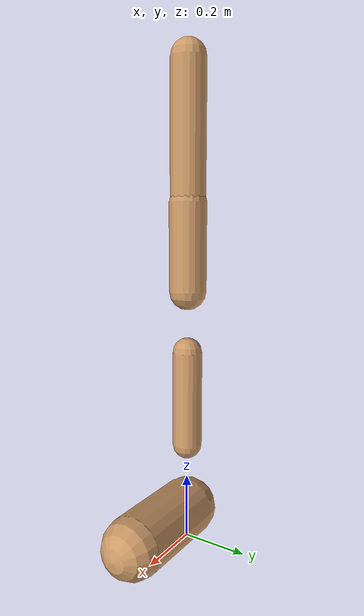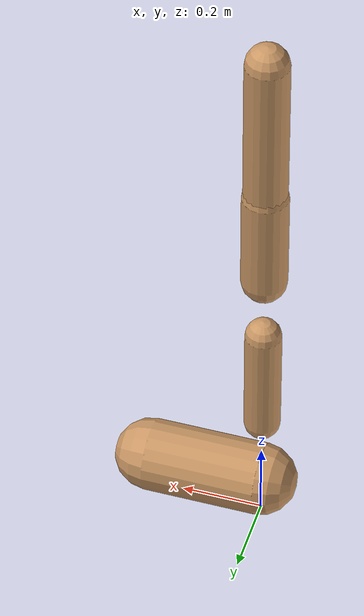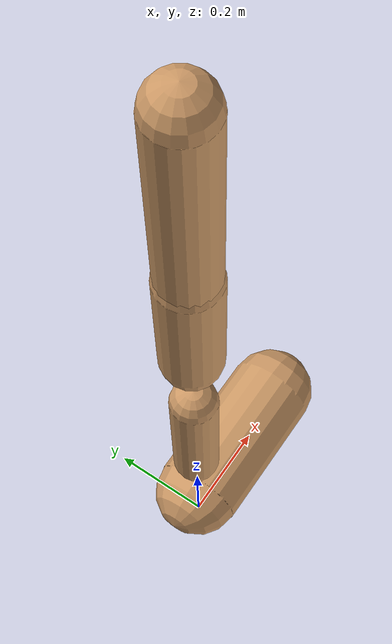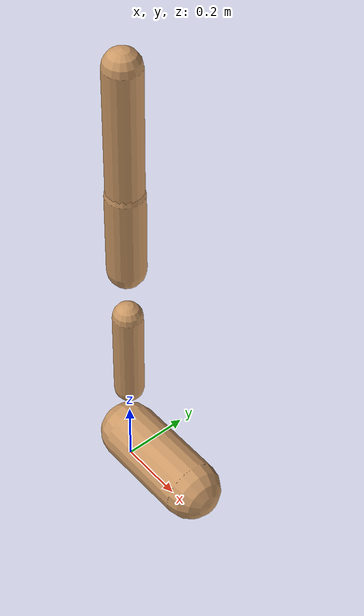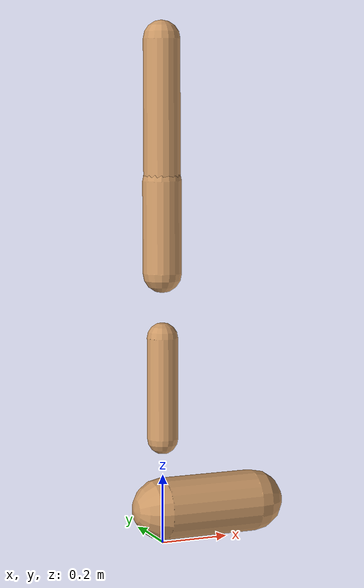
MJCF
<mujoco model="walker2d">
  <compiler angle="degree" coordinate="global" inertiafromgeom="true" />
  <default>
    <joint armature="0.01" damping=".1" limited="true" />
    <geom conaffinity="0" condim="3" contype="1" density="1000" friction="0.8 .1 .1" rgba="0.8 0.6 .4 1" />
  </default>
  <option integrator="RK4" timestep="0.002" />
  <worldbody>

    <body name="torso" pos="0 0 -0.39323007048497916">
      <joint armature="0" axis="1 0 0" damping="0" limited="false" name="ignorex" pos="0 0 0" stiffness="0" type="slide" />
      <joint armature="0" axis="0 0 1" damping="0" limited="false" name="ignorez" pos="0 0 0" ref="1.25" stiffness="0" type="slide" />
      <joint armature="0" axis="0 1 0" damping="0" limited="false" name="ignorey" pos="0 0 0" stiffness="0" type="hinge" />
      <geom fromto="0 0 1.45 0 0 1.05" name="torso_geom" size="0.052772888888507334" type="capsule" />
      <body name="thigh">
        <joint axis="0 -1 0" name="thigh_joint" pos="0 0 1.05" range="-150 0" type="hinge" />
        <geom fromto="0.0 0.0 1.05 0.0 0.0 0.7862668754928849" name="thigh_geom" size="0.0559003321941548" type="capsule" />
        <body name="leg" pos="0.0 0.0 0.1862668754928849">
          <joint axis="0 -1 0" name="leg_joint" pos="0 0 0.6" range="-150 0" type="hinge" />
          <geom fromto="0.0 0.0 0.6 0.0 0.0 0.3069631949920943" name="leg_geom" size="0.04472026575532384" type="capsule" />
          <body name="foot" pos="0.0 0.0 0.20696319499209428">
            <joint axis="0 -1 0" name="foot_joint" pos="0 0 0.1" range="-45 45" type="hinge" />
            <geom fromto="-0.0 0.0 0.10000000000000002 0.2826032660134256 0.0 0.10000000000000002" name="foot_geom" size="0.08996740340222234" type="capsule" />
          </body>
        </body>
      </body>

      <body name="thigh_left">
        <joint axis="0 -1 0" name="thigh_left_joint" pos="0 0 1.05" range="-150 0" type="hinge" />
        <geom fromto="0.0 0.0 1.05 0.0 0.0 0.7862668754928849" name="thigh_left_geom" rgba=".7 .3 .6 1" size="0.0559003321941548" type="capsule" />
        <body name="leg_left" pos="0.0 0.0 0.1862668754928849">
          <joint axis="0 -1 0" name="leg_left_joint" pos="0 0 0.6" range="-150 0" type="hinge" />
          <geom fromto="0.0 0.0 0.6 0.0 0.0 0.3069631949920943" name="leg_left_geom" rgba=".7 .3 .6 1" size="0.04472026575532384" type="capsule" />
          <body name="foot_left" pos="0.0 0.0 0.20696319499209428">
            <joint axis="0 -1 0" name="foot_left_joint" pos="0 0 0.1" range="-45 45" type="hinge" />
            <geom fromto="-0.0 0.0 0.10000000000000002 0.2826032660134256 0.0 0.10000000000000002" name="foot_left_geom" rgba=".7 .3 .6 1" size="0.08996740340222234" type="capsule" />
          </body>
        </body>
      </body>
    </body>
  </worldbody>
  <actuator>

    <motor ctrllimited="true" ctrlrange="-1.0 1.0" gear="100" joint="thigh_joint" />
    <motor ctrllimited="true" ctrlrange="-1.0 1.0" gear="100" joint="leg_joint" />
    <motor ctrllimited="true" ctrlrange="-1.0 1.0" gear="100" joint="foot_joint" />
    <motor ctrllimited="true" ctrlrange="-1.0 1.0" gear="100" joint="thigh_left_joint" />
    <motor ctrllimited="true" ctrlrange="-1.0 1.0" gear="100" joint="leg_left_joint" />
    <motor ctrllimited="true" ctrlrange="-1.0 1.0" gear="100" joint="foot_left_joint" />

  </actuator>
</mujoco>
